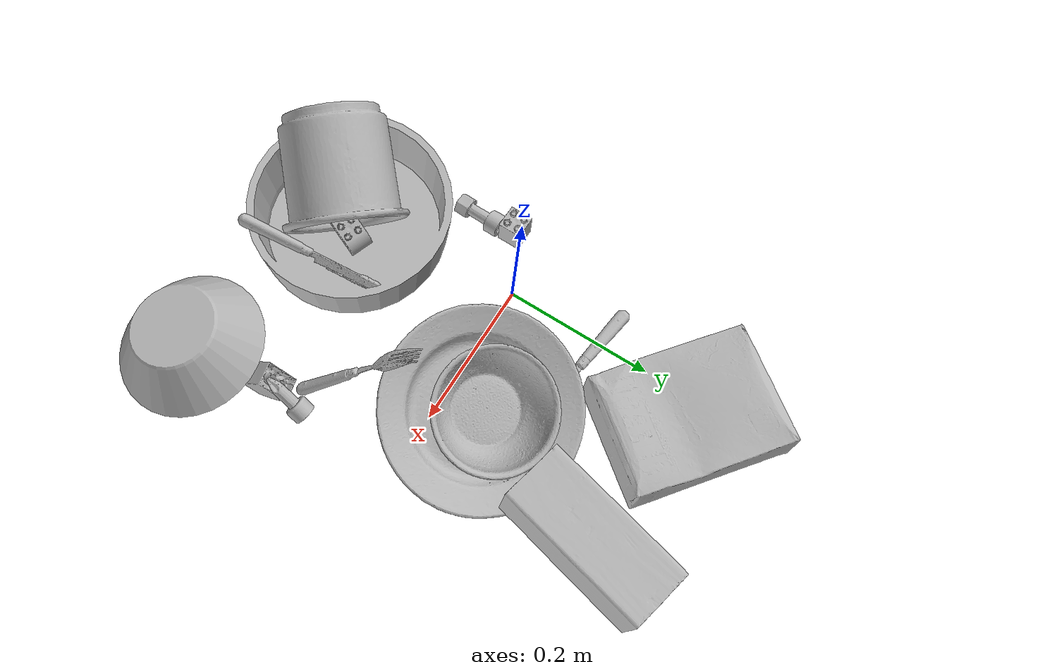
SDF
<sdf version="1.4">
  <world name="default">
    <light name="light1" type="point">
      <pose>0 0 1 0 0 0</pose>
      <diffuse>3 3 3 1</diffuse>
      <specular>3 3 3 1</specular>
    </light>
    <light name="light2" type="point">
      <pose>0 0.5 2 0 0 0</pose>
      <diffuse>1 1 1 1</diffuse>
      <specular>1 1 1 1</specular>
    </light>
    <light name="light3" type="point">
      <pose>0 0.5 2 0 0 0</pose>
      <diffuse>3 3 3 1</diffuse>
      <specular>3 3 3 1</specular>
    </light>
    <scene>
      <ambient>0.7 0.7 0.7</ambient>
    </scene>
    <model name="plate1">
      <link name="link_plate1">
        <collision name="default">
          <geometry>
            <mesh>
              <uri>model://pan_tefal/collision_meshes/collision.obj</uri>
              <scale>1.0 1.0 1.0</scale>
            </mesh>
          </geometry>
          <surface>
            <friction>
              <ode>
                <mu>0.5</mu>
                <mu2>0.5</mu2>
              </ode>
            </friction>
          <contact>
        <ode>
            <max_vel>0</max_vel>
            <min_depth>0.0001</min_depth>
            <kp>1e8</kp>
        </ode>
    </contact></surface>
        </collision>
        <visual name="default">
          <geometry>
            <mesh>
              <uri>model://pan_tefal/visual_meshes/visual.dae</uri>
              <scale>1.0 1.0 1.0</scale>
            </mesh>
          </geometry>
        </visual>
        <inertial>
          <mass>1.083925485610962</mass>
          <pose>-0.00018002053548116237 3.279013617429882e-05 -0.00851493701338768 0.000819031166138591 -0.00033013701589440335 -0.33186472787035126</pose>
          <inertia>
            <ixx>0.0074822875</ixx>
            <iyy>0.0075305253</iyy>
            <izz>0.013773448</izz>
            <ixy>0</ixy>
            <ixz>0</ixz>
            <iyz>0</iyz>
          </inertia>
        </inertial>
      </link>
      <pose>0.03376112878322601 -0.2293643206357956 0.03804999962449074 7.216101712768801e-07 1.9945756844003513e-07 0.4668366433011039</pose>
    </model>
    <model name="plate2">
      <link name="link_plate2">
        <collision name="default">
          <geometry>
            <mesh>
              <uri>model://plate/collision_meshes/collision.obj</uri>
              <scale>1.0 1.0 1.0</scale>
            </mesh>
          </geometry>
          <surface>
            <friction>
              <ode>
                <mu>0.5</mu>
                <mu2>0.5</mu2>
              </ode>
            </friction>
          <contact>
        <ode>
            <max_vel>0</max_vel>
            <min_depth>0.0001</min_depth>
            <kp>1e8</kp>
        </ode>
    </contact></surface>
        </collision>
        <visual name="default">
          <geometry>
            <mesh>
              <uri>model://plate/visual_meshes/visual.dae</uri>
              <scale>1.0 1.0 1.0</scale>
            </mesh>
          </geometry>
        </visual>
        <inertial>
          <mass>0.26740342378616333</mass>
          <pose>-0.00060446304269135 0.00027825793949887156 -0.0010561994276940823 0.0022187903743134635 -0.0032254779444460427 0.4526079808055429</pose>
          <inertia>
            <ixx>0.0012509191</ixx>
            <iyy>0.0012389544</iyy>
            <izz>0.00244661</izz>
            <ixy>0</ixy>
            <ixz>0</ixz>
            <iyz>0</iyz>
          </inertia>
        </inertial>
      </link>
      <pose>0.16754554212093353 0.055454812943935394 0.04262769594788551 -0.33142242866072 0.18404943588233005 0.06000494338780198</pose>
    </model>
    <model name="bowl1">
      <link name="link_bowl1">
        <collision name="default">
          <geometry>
            <mesh>
              <uri>model://bowl/collision_meshes/collision.obj</uri>
              <scale>1.0 1.0 1.0</scale>
            </mesh>
          </geometry>
          <surface>
            <friction>
              <ode>
                <mu>0.5</mu>
                <mu2>0.5</mu2>
              </ode>
            </friction>
          <contact>
        <ode>
            <max_vel>0</max_vel>
            <min_depth>0.0001</min_depth>
            <kp>1e8</kp>
        </ode>
    </contact></surface>
        </collision>
        <visual name="default">
          <geometry>
            <mesh>
              <uri>model://bowl/visual_meshes/visual.dae</uri>
              <scale>1.0 1.0 1.0</scale>
            </mesh>
          </geometry>
        </visual>
        <inertial>
          <mass>0.062040042132139206</mass>
          <pose>0.00020445157133508474 -0.001030211104080081 -0.0008042659028433263 -0.01576411046463803 0.014546752923574583 0.7140383763158871</pose>
          <inertia>
            <ixx>0.00014251085</ixx>
            <iyy>0.0001393266</iyy>
            <izz>0.00023975229</izz>
            <ixy>0</ixy>
            <ixz>0</ixz>
            <iyz>0</iyz>
          </inertia>
        </inertial>
      </link>
      <pose>0.16542471945285797 0.06821849197149277 0.057902224361896515 -0.24057802419460098 0.2937115382568355 0.46369926076738494</pose>
    </model>
    <model name="bowl2">
      <link name="link_bowl2">
        <collision name="default">
          <geometry>
            <mesh>
              <uri>model://bowl_a/collision_meshes/collision.obj</uri>
              <scale>1.0 1.0 1.0</scale>
            </mesh>
          </geometry>
          <surface>
            <friction>
              <ode>
                <mu>0.5</mu>
                <mu2>0.5</mu2>
              </ode>
            </friction>
          <contact>
        <ode>
            <max_vel>0</max_vel>
            <min_depth>0.0001</min_depth>
            <kp>1e8</kp>
        </ode>
    </contact></surface>
        </collision>
        <visual name="default">
          <geometry>
            <mesh>
              <uri>model://bowl_a/visual_meshes/visual.dae</uri>
              <scale>1.0 1.0 1.0</scale>
            </mesh>
          </geometry>
        </visual>
        <inertial>
          <mass>0.2882154881954193</mass>
          <pose>0.00027867534663528204 4.731079752673395e-05 -0.0013765293406322598 -0.0009805311525578244 -0.0010938248781945461 -0.19124031319294812</pose>
          <inertia>
            <ixx>0.00082056265</ixx>
            <iyy>0.0008256004</iyy>
            <izz>0.001459402</izz>
            <ixy>0</ixy>
            <ixz>0</ixz>
            <iyz>0</iyz>
          </inertia>
        </inertial>
      </link>
      <pose>0.2889672815799713 -0.3099000155925751 0.04706278815865517 3.0980261692871145 0.18043346226256524 -1.5593557840193464</pose>
    </model>
    <model name="silverware1">
      <link name="link_silverware1">
        <collision name="default">
          <geometry>
            <mesh>
              <uri>model://fork/collision_meshes/collision.obj</uri>
              <scale>1.0 1.0 1.0</scale>
            </mesh>
          </geometry>
          <surface>
            <friction>
              <ode>
                <mu>0.5</mu>
                <mu2>0.5</mu2>
              </ode>
            </friction>
          <contact>
        <ode>
            <max_vel>0</max_vel>
            <min_depth>0.0001</min_depth>
            <kp>1e8</kp>
        </ode>
    </contact></surface>
        </collision>
        <visual name="default">
          <geometry>
            <mesh>
              <uri>model://fork/visual_meshes/visual.dae</uri>
              <scale>1.0 1.0 1.0</scale>
            </mesh>
          </geometry>
        </visual>
        <inertial>
          <mass>0.01398836076259613</mass>
          <pose>-0.02957003563642502 0.00046588244731538 0.0003218861238565296 -0.013550934691899108 -0.010977833142804767 0.01445389655901604</pose>
          <inertia>
            <ixx>4.903713e-07</ixx>
            <iyy>3.6519592e-05</iyy>
            <izz>3.673893e-05</izz>
            <ixy>0</ixy>
            <ixz>0</ixz>
            <iyz>0</iyz>
          </inertia>
        </inertial>
      </link>
      <pose>0.2147548943758011 -0.09631358087062836 0.06411059945821762 2.722565427752997 -0.6715956554336298 2.2061917899163603</pose>
    </model>
    <model name="box1">
      <link name="link_box1">
        <collision name="default">
          <geometry>
            <mesh>
              <uri>model://cracker_box/collision_meshes/collision.obj</uri>
              <scale>1.0 1.0 1.0</scale>
            </mesh>
          </geometry>
          <surface>
            <friction>
              <ode>
                <mu>0.5</mu>
                <mu2>0.5</mu2>
              </ode>
            </friction>
          <contact>
        <ode>
            <max_vel>0</max_vel>
            <min_depth>0.0001</min_depth>
            <kp>1e8</kp>
        </ode>
    </contact></surface>
        </collision>
        <visual name="default">
          <geometry>
            <mesh>
              <uri>model://cracker_box/visual_meshes/visual.dae</uri>
              <scale>1.0 1.0 1.0</scale>
            </mesh>
          </geometry>
        </visual>
        <inertial>
          <mass>3.3038947582244873</mass>
          <pose>0.0009464139584451914 0.00025434247800149024 -0.0017029535956680775 -0.00031620753779881404 -0.011106489600569465 0.002546794535826719</pose>
          <inertia>
            <ixx>0.008403633</ixx>
            <iyy>0.013876048</iyy>
            <izz>0.019802397</izz>
            <ixy>0</ixy>
            <ixz>0</ixz>
            <iyz>0</iyz>
          </inertia>
        </inertial>
      </link>
      <pose>0.03305038809776306 0.27065184712409973 0.03638410195708275 -0.014051021030863803 -0.0050160516800868285 2.4764943636134142</pose>
    </model>
    <model name="box2">
      <link name="link_box2">
        <collision name="default">
          <geometry>
            <mesh>
              <uri>model://wood_block/collision_meshes/collision.obj</uri>
              <scale>1.0 1.0 1.0</scale>
            </mesh>
          </geometry>
          <surface>
            <friction>
              <ode>
                <mu>0.5</mu>
                <mu2>0.5</mu2>
              </ode>
            </friction>
          <contact>
        <ode>
            <max_vel>0</max_vel>
            <min_depth>0.0001</min_depth>
            <kp>1e8</kp>
        </ode>
    </contact></surface>
        </collision>
        <visual name="default">
          <geometry>
            <mesh>
              <uri>model://wood_block/visual_meshes/visual.dae</uri>
              <scale>1.0 1.0 1.0</scale>
            </mesh>
          </geometry>
        </visual>
        <inertial>
          <mass>1.8317598104476929</mass>
          <pose>-5.813315510749817e-06 -0.000570809468626976 0.0002640858292579651 -0.05220774405774941 -0.005192695034541599 -0.006861378043904631</pose>
          <inertia>
            <ixx>0.0024511719</ixx>
            <iyy>0.0077432534</iyy>
            <izz>0.007714289</izz>
            <ixy>0</ixy>
            <ixz>0</ixz>
            <iyz>0</iyz>
          </inertia>
        </inertial>
      </link>
      <pose>0.23292377591133118 0.24625129997730255 0.0512874573469162 -3.1402985541745125 0.0507307924288496 1.3447743474644487</pose>
    </model>
    <model name="cup1">
      <link name="link_cup1">
        <collision name="default">
          <geometry>
            <mesh>
              <uri>model://f_cups/collision_meshes/collision.obj</uri>
              <scale>2.0 2.0 2.0</scale>
            </mesh>
          </geometry>
          <surface>
            <friction>
              <ode>
                <mu>0.5</mu>
                <mu2>0.5</mu2>
              </ode>
            </friction>
          <contact>
        <ode>
            <max_vel>0</max_vel>
            <min_depth>0.0001</min_depth>
            <kp>1e8</kp>
        </ode>
    </contact></surface>
        </collision>
        <visual name="default">
          <geometry>
            <mesh>
              <uri>model://f_cups/visual_meshes/visual.dae</uri>
              <scale>2.0 2.0 2.0</scale>
            </mesh>
          </geometry>
        </visual>
        <inertial>
          <mass>0.8281989693641663</mass>
          <pose>-0.006342937704175711 -0.0012480166042223573 -0.007311076857149601 0.7862278170542254 -0.2607923358756499 -0.18237381375543787</pose>
          <inertia>
            <ixx>0.003114117</ixx>
            <iyy>0.0032667436</iyy>
            <izz>0.0034007723</izz>
            <ixy>0</ixy>
            <ixz>0</ixz>
            <iyz>0</iyz>
          </inertia>
        </inertial>
      </link>
      <pose>0.013508349657058716 -0.2560103237628937 0.10779642313718796 2.7151188550855068 -1.13441467919136 1.1884685018515864</pose>
    </model>
    <model name="silverware2">
      <link name="link_silverware2">
        <collision name="default">
          <geometry>
            <mesh>
              <uri>model://knife/collision_meshes/collision.obj</uri>
              <scale>1.0 1.0 1.0</scale>
            </mesh>
          </geometry>
          <surface>
            <friction>
              <ode>
                <mu>0.5</mu>
                <mu2>0.5</mu2>
              </ode>
            </friction>
          <contact>
        <ode>
            <max_vel>0</max_vel>
            <min_depth>0.0001</min_depth>
            <kp>1e8</kp>
        </ode>
    </contact></surface>
        </collision>
        <visual name="default">
          <geometry>
            <mesh>
              <uri>model://knife/visual_meshes/visual.dae</uri>
              <scale>1.0 1.0 1.0</scale>
            </mesh>
          </geometry>
        </visual>
        <inertial>
          <mass>0.033610157668590546</mass>
          <pose>-0.02378525771200657 0.0015275131445378065 5.0620201363926753e-05 0.07305356746503441 0.01724842347870745 -0.0074098216508425</pose>
          <inertia>
            <ixx>9.539925e-07</ixx>
            <iyy>0.00012912478</iyy>
            <izz>0.00012943202</izz>
            <ixy>0</ixy>
            <ixz>0</ixz>
            <iyz>0</iyz>
          </inertia>
        </inertial>
      </link>
      <pose>0.112179696559906 -0.23127546906471252 0.05117085948586464 1.17934904609584 0.4226759443620877 1.7892626560279692</pose>
    </model>
    <model name="silverware3">
      <link name="link_silverware3">
        <collision name="default">
          <geometry>
            <mesh>
              <uri>model://spoon/collision_meshes/collision.obj</uri>
              <scale>1.0 1.0 1.0</scale>
            </mesh>
          </geometry>
          <surface>
            <friction>
              <ode>
                <mu>0.5</mu>
                <mu2>0.5</mu2>
              </ode>
            </friction>
          <contact>
        <ode>
            <max_vel>0</max_vel>
            <min_depth>0.0001</min_depth>
            <kp>1e8</kp>
        </ode>
    </contact></surface>
        </collision>
        <visual name="default">
          <geometry>
            <mesh>
              <uri>model://spoon/visual_meshes/visual.dae</uri>
              <scale>1.0 1.0 1.0</scale>
            </mesh>
          </geometry>
        </visual>
        <inertial>
          <mass>0.03036251850426197</mass>
          <pose>-0.005526314955204725 -0.0016034168656915426 -0.0007271655485965312 0.035217258575681115 -0.03906584346489495 0.006150616147242728</pose>
          <inertia>
            <ixx>1.6888126e-06</ixx>
            <iyy>0.00011552838</iyy>
            <izz>0.00011636122</izz>
            <ixy>0</ixy>
            <ixz>0</ixz>
            <iyz>0</iyz>
          </inertia>
        </inertial>
      </link>
      <pose>0.04169715940952301 0.12417877465486526 0.01013356726616621 3.1050323790084304 -0.06197837870635765 -0.1253406059042338</pose>
    </model>
    <model name="toy1">
      <link name="link_toy1">
        <collision name="default">
          <geometry>
            <mesh>
              <uri>model://d_lego_duplo/collision_meshes/collision.obj</uri>
              <scale>1.0 1.0 1.0</scale>
            </mesh>
          </geometry>
          <surface>
            <friction>
              <ode>
                <mu>0.5</mu>
                <mu2>0.5</mu2>
              </ode>
            </friction>
          <contact>
        <ode>
            <max_vel>0</max_vel>
            <min_depth>0.0001</min_depth>
            <kp>1e8</kp>
        </ode>
    </contact></surface>
        </collision>
        <visual name="default">
          <geometry>
            <mesh>
              <uri>model://d_lego_duplo/visual_meshes/visual.dae</uri>
              <scale>1.0 1.0 1.0</scale>
            </mesh>
          </geometry>
        </visual>
        <inertial>
          <mass>0.05888136848807335</mass>
          <pose>0.00283056334592402 0.00016366125782951713 0.0008589810458943248 0.0801088994423302 -0.3835518637869403 0.0010296847698221781</pose>
          <inertia>
            <ixx>1.1398561e-05</ixx>
            <iyy>1.6177655e-05</iyy>
            <izz>1.5601077e-05</izz>
            <ixy>0</ixy>
            <ixz>0</ixz>
            <iyz>0</iyz>
          </inertia>
        </inertial>
      </link>
      <pose>0.27409103512763977 -0.19339117407798767 0.01790492609143257 -3.1376137790071112 -0.8575209004673111 -1.3735466692678153</pose>
    </model>
    <model name="toy2">
      <link name="link_toy2">
        <collision name="default">
          <geometry>
            <mesh>
              <uri>model://d_toy_airplane/collision_meshes/collision.obj</uri>
              <scale>1.0 1.0 1.0</scale>
            </mesh>
          </geometry>
          <surface>
            <friction>
              <ode>
                <mu>0.5</mu>
                <mu2>0.5</mu2>
              </ode>
            </friction>
          <contact>
        <ode>
            <max_vel>0</max_vel>
            <min_depth>0.0001</min_depth>
            <kp>1e8</kp>
        </ode>
    </contact></surface>
        </collision>
        <visual name="default">
          <geometry>
            <mesh>
              <uri>model://d_toy_airplane/visual_meshes/visual.dae</uri>
              <scale>1.0 1.0 1.0</scale>
            </mesh>
          </geometry>
        </visual>
        <inertial>
          <mass>0.019283337518572807</mass>
          <pose>9.410297934664413e-05 -5.809335198136978e-05 -0.011728096753358841 0.00026677547083937895 0.00467899750463603 0.5194224971352938</pose>
          <inertia>
            <ixx>5.7807692e-06</ixx>
            <iyy>5.78513e-06</iyy>
            <izz>1.7452522e-06</izz>
            <ixy>0</ixy>
            <ixz>0</ixz>
            <iyz>0</iyz>
          </inertia>
        </inertial>
      </link>
      <pose>0.2804221510887146 -0.15808875858783722 0.029521359130740166 -0.7143553449105597 0.8504006561262737 -2.5432689846525793</pose>
    </model>
    <model name="toy3">
      <link name="link_toy3">
        <collision name="default">
          <geometry>
            <mesh>
              <uri>model://b_lego_duplo/collision_meshes/collision.obj</uri>
              <scale>1.0 1.0 1.0</scale>
            </mesh>
          </geometry>
          <surface>
            <friction>
              <ode>
                <mu>0.5</mu>
                <mu2>0.5</mu2>
              </ode>
            </friction>
          <contact>
        <ode>
            <max_vel>0</max_vel>
            <min_depth>0.0001</min_depth>
            <kp>1e8</kp>
        </ode>
    </contact></surface>
        </collision>
        <visual name="default">
          <geometry>
            <mesh>
              <uri>model://b_lego_duplo/visual_meshes/visual.dae</uri>
              <scale>1.0 1.0 1.0</scale>
            </mesh>
          </geometry>
        </visual>
        <inertial>
          <mass>0.03460631147027016</mass>
          <pose>-0.00011053022171836346 -9.15238524612505e-06 0.0019294291269034147 -0.037494934713503944 -0.026353982766830427 0.45190023703794546</pose>
          <inertia>
            <ixx>7.082442e-06</ixx>
            <iyy>7.1300533e-06</iyy>
            <izz>6.310225e-06</izz>
            <ixy>0</ixy>
            <ixz>0</ixz>
            <iyz>0</iyz>
          </inertia>
        </inertial>
      </link>
      <pose>-0.07478435337543488 -0.04388594999909401 0.021815000101923943 6.588880230426963e-07 3.9342735608653135e-08 1.5571347358752268</pose>
    </model>
    <model name="toy4">
      <link name="link_toy4">
        <collision name="default">
          <geometry>
            <mesh>
              <uri>model://c_toy_airplane/collision_meshes/collision.obj</uri>
              <scale>1.0 1.0 1.0</scale>
            </mesh>
          </geometry>
          <surface>
            <friction>
              <ode>
                <mu>0.5</mu>
                <mu2>0.5</mu2>
              </ode>
            </friction>
          <contact>
        <ode>
            <max_vel>0</max_vel>
            <min_depth>0.0001</min_depth>
            <kp>1e8</kp>
        </ode>
    </contact></surface>
        </collision>
        <visual name="default">
          <geometry>
            <mesh>
              <uri>model://c_toy_airplane/visual_meshes/visual.dae</uri>
              <scale>1.0 1.0 1.0</scale>
            </mesh>
          </geometry>
        </visual>
        <inertial>
          <mass>0.03008922003209591</mass>
          <pose>-0.00023024248366709799 -4.429292062013701e-07 -0.006080532446503639 -0.006192764609865116 -0.016797726061543002 0.7654936540566961</pose>
          <inertia>
            <ixx>1.3816358e-05</ixx>
            <iyy>1.3777365e-05</iyy>
            <izz>3.2438072e-06</izz>
            <ixy>0</ixy>
            <ixz>0</ixz>
            <iyz>0</iyz>
          </inertia>
        </inertial>
      </link>
      <pose>-0.06892561912536621 -0.09440817683935165 0.014215987175703049 -1.7880549906401282 1.324740045501494 2.886021533229863</pose>
    </model>
    <model name="toy5">
      <link name="link_toy5">
        <collision name="default">
          <geometry>
            <mesh>
              <uri>model://a_lego_duplo/collision_meshes/collision.obj</uri>
              <scale>1.0 1.0 1.0</scale>
            </mesh>
          </geometry>
          <surface>
            <friction>
              <ode>
                <mu>0.5</mu>
                <mu2>0.5</mu2>
              </ode>
            </friction>
          <contact>
        <ode>
            <max_vel>0</max_vel>
            <min_depth>0.0001</min_depth>
            <kp>1e8</kp>
        </ode>
    </contact></surface>
        </collision>
        <visual name="default">
          <geometry>
            <mesh>
              <uri>model://a_lego_duplo/visual_meshes/visual.dae</uri>
              <scale>1.0 1.0 1.0</scale>
            </mesh>
          </geometry>
        </visual>
        <inertial>
          <mass>0.02472195029258728</mass>
          <pose>-0.00011337580508552492 0.00018517558055464178 0.0003692609316203743 -0.014116968053030856 -0.00012565531185804749 6.140757465531037e-05</pose>
          <inertia>
            <ixx>3.1695524e-06</ixx>
            <iyy>7.100487e-06</iyy>
            <izz>8.795534e-06</izz>
            <ixy>0</ixy>
            <ixz>0</ixz>
            <iyz>0</iyz>
          </inertia>
        </inertial>
      </link>
      <pose>0.04937796667218208 -0.22358949482440948 0.032282859086990356 0.10947899884024583 0.39757613658719626 1.2347902067901817</pose>
    </model>
  <physics type="ode">
      <max_contacts>50</max_contacts>
      <ode>
        <solver>
          <type>quick</type>
          <iters>75</iters>
        </solver>
        <constraints>
          <contact_max_correcting_vel>0</contact_max_correcting_vel>
          <contact_surface_layer>0</contact_surface_layer>
        </constraints>
      </ode>
    </physics></world>
</sdf>
